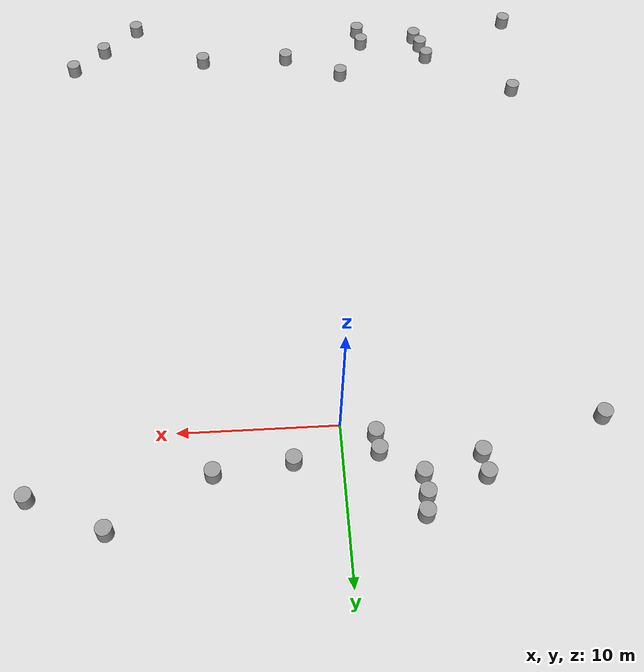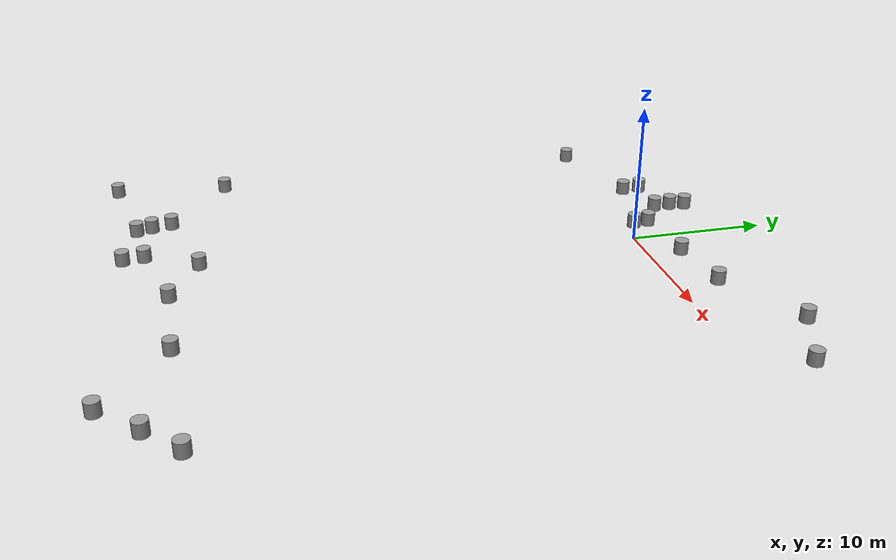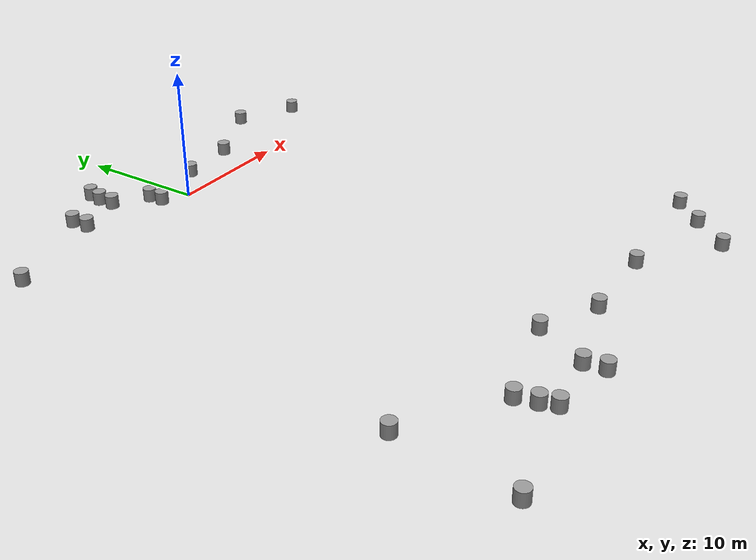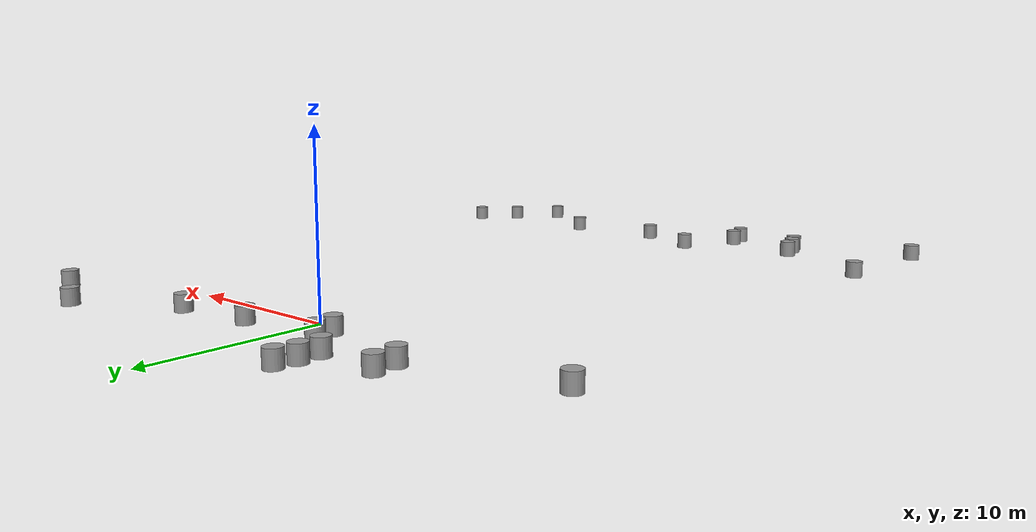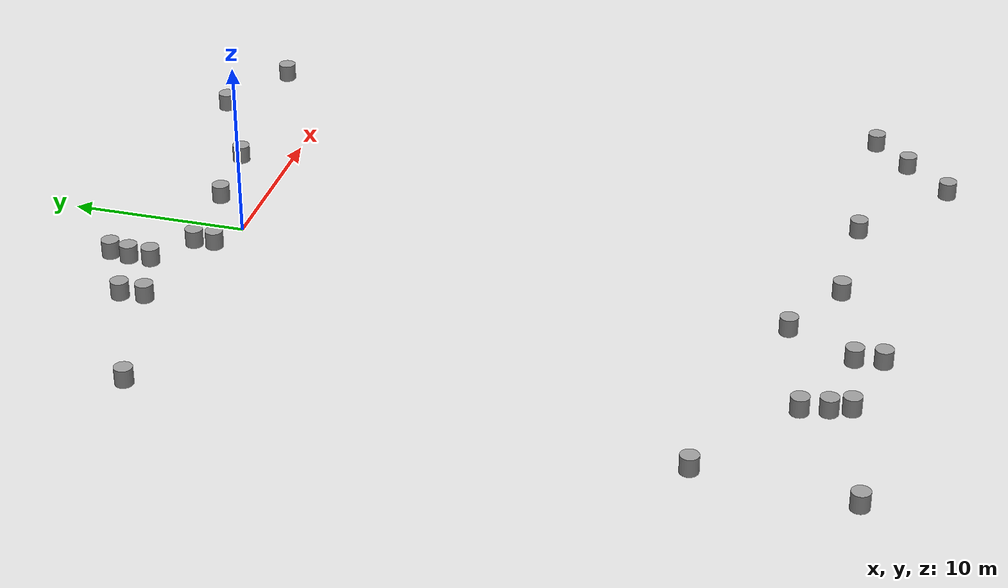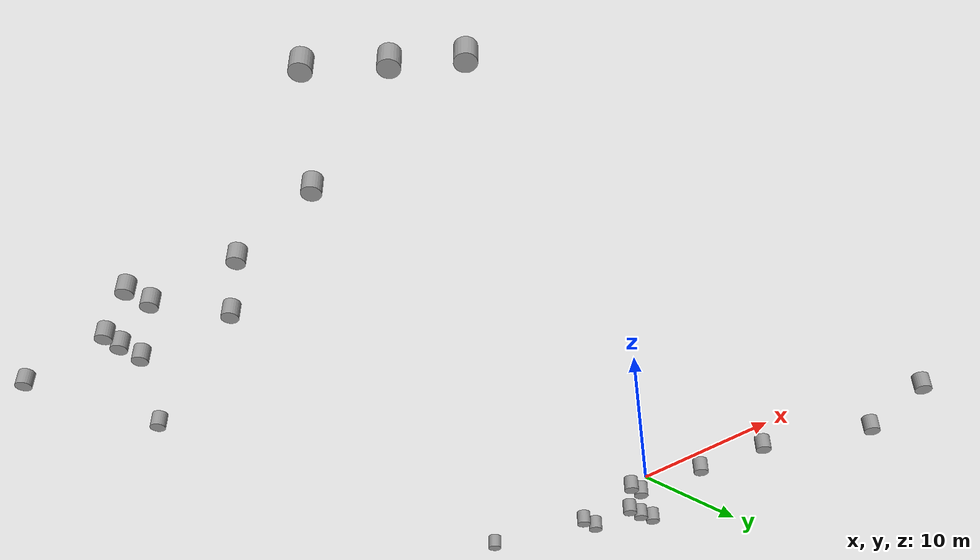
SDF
<?xml version='1.0'?>
<sdf version='1.7'>
  <model name='barricades'>
    <link name='link_0'>
      <inertial>
        <mass>1</mass>
        <inertia>
          <ixx>0.145833</ixx>
          <ixy>0</ixy>
          <ixz>0</ixz>
          <iyy>0.145833</iyy>
          <iyz>0</iyz>
          <izz>0.125</izz>
        </inertia>
      </inertial>
      <pose>-8.2797 2.45365 0.5 0 -0 0</pose>
      <visual name='visual'>
        <pose>0 0 0 0 -0 0</pose>
        <geometry>
          <cylinder>
            <radius>0.5</radius>
            <length>1</length>
          </cylinder>
        </geometry>
        <material>
          <lighting>1</lighting>
          <script>
            <uri>file://media/materials/scripts/gazebo.material</uri>
            <name>Gazebo/Grey</name>
          </script>
          <shader type='pixel'/>
        </material>
        <transparency>0</transparency>
        <cast_shadows>1</cast_shadows>
      </visual>
      <collision name='collision'>
        <laser_retro>0</laser_retro>
        <max_contacts>10</max_contacts>
        <pose>0 0 0 0 -0 0</pose>
        <geometry>
          <cylinder>
            <radius>0.5</radius>
            <length>1</length>
          </cylinder>
        </geometry>
        <surface>
          <friction>
            <ode>
              <mu>1</mu>
              <mu2>1</mu2>
              <fdir1>0 0 0</fdir1>
              <slip1>0</slip1>
              <slip2>0</slip2>
            </ode>
            <torsional>
              <coefficient>1</coefficient>
              <patch_radius>0</patch_radius>
              <surface_radius>0</surface_radius>
              <use_patch_radius>1</use_patch_radius>
              <ode>
                <slip>0</slip>
              </ode>
            </torsional>
          </friction>
          <bounce>
            <restitution_coefficient>0</restitution_coefficient>
            <threshold>1e+06</threshold>
          </bounce>
          <contact>
            <collide_without_contact>0</collide_without_contact>
            <collide_without_contact_bitmask>1</collide_without_contact_bitmask>
            <collide_bitmask>1</collide_bitmask>
            <ode>
              <soft_cfm>0</soft_cfm>
              <soft_erp>0.2</soft_erp>
              <kp>1e+13</kp>
              <kd>1</kd>
              <max_vel>0.01</max_vel>
              <min_depth>0</min_depth>
            </ode>
            <bullet>
              <split_impulse>1</split_impulse>
              <split_impulse_penetration_threshold>-0.01</split_impulse_penetration_threshold>
              <soft_cfm>0</soft_cfm>
              <soft_erp>0.2</soft_erp>
              <kp>1e+13</kp>
              <kd>1</kd>
            </bullet>
          </contact>
        </surface>
      </collision>
    </link>
    <link name='link_1'>
      <inertial>
        <mass>1</mass>
        <inertia>
          <ixx>0.145833</ixx>
          <ixy>0</ixy>
          <ixz>0</ixz>
          <iyy>0.145833</iyy>
          <iyz>0</iyz>
          <izz>0.125</izz>
        </inertia>
      </inertial>
      <pose>-8.36976 3.83402 0.5 0 -0 0</pose>
      <visual name='visual'>
        <pose>0 0 0 0 -0 0</pose>
        <geometry>
          <cylinder>
            <radius>0.5</radius>
            <length>1</length>
          </cylinder>
        </geometry>
        <material>
          <lighting>1</lighting>
          <script>
            <uri>file://media/materials/scripts/gazebo.material</uri>
            <name>Gazebo/Grey</name>
          </script>
          <shader type='pixel'/>
        </material>
        <transparency>0</transparency>
        <cast_shadows>1</cast_shadows>
      </visual>
      <collision name='collision'>
        <laser_retro>0</laser_retro>
        <max_contacts>10</max_contacts>
        <pose>0 0 0 0 -0 0</pose>
        <geometry>
          <cylinder>
            <radius>0.5</radius>
            <length>1</length>
          </cylinder>
        </geometry>
        <surface>
          <friction>
            <ode>
              <mu>1</mu>
              <mu2>1</mu2>
              <fdir1>0 0 0</fdir1>
              <slip1>0</slip1>
              <slip2>0</slip2>
            </ode>
            <torsional>
              <coefficient>1</coefficient>
              <patch_radius>0</patch_radius>
              <surface_radius>0</surface_radius>
              <use_patch_radius>1</use_patch_radius>
              <ode>
                <slip>0</slip>
              </ode>
            </torsional>
          </friction>
          <bounce>
            <restitution_coefficient>0</restitution_coefficient>
            <threshold>1e+06</threshold>
          </bounce>
          <contact>
            <collide_without_contact>0</collide_without_contact>
            <collide_without_contact_bitmask>1</collide_without_contact_bitmask>
            <collide_bitmask>1</collide_bitmask>
            <ode>
              <soft_cfm>0</soft_cfm>
              <soft_erp>0.2</soft_erp>
              <kp>1e+13</kp>
              <kd>1</kd>
              <max_vel>0.01</max_vel>
              <min_depth>0</min_depth>
            </ode>
            <bullet>
              <split_impulse>1</split_impulse>
              <split_impulse_penetration_threshold>-0.01</split_impulse_penetration_threshold>
              <soft_cfm>0</soft_cfm>
              <soft_erp>0.2</soft_erp>
              <kp>1e+13</kp>
              <kd>1</kd>
            </bullet>
          </contact>
        </surface>
      </collision>
    </link>
    <link name='link_10'>
      <inertial>
        <mass>1</mass>
        <inertia>
          <ixx>0.145833</ixx>
          <ixy>0</ixy>
          <ixz>0</ixz>
          <iyy>0.145833</iyy>
          <iyz>0</iyz>
          <izz>0.125</izz>
        </inertia>
      </inertial>
      <pose>13.8302 6.07947 0.5 0 -0 0</pose>
      <visual name='visual'>
        <pose>0 0 0 0 -0 0</pose>
        <geometry>
          <cylinder>
            <radius>0.5</radius>
            <length>1</length>
          </cylinder>
        </geometry>
        <material>
          <lighting>1</lighting>
          <script>
            <uri>file://media/materials/scripts/gazebo.material</uri>
            <name>Gazebo/Grey</name>
          </script>
          <shader type='pixel'/>
        </material>
        <transparency>0</transparency>
        <cast_shadows>1</cast_shadows>
      </visual>
      <collision name='collision'>
        <laser_retro>0</laser_retro>
        <max_contacts>10</max_contacts>
        <pose>0 0 0 0 -0 0</pose>
        <geometry>
          <cylinder>
            <radius>0.5</radius>
            <length>1</length>
          </cylinder>
        </geometry>
        <surface>
          <friction>
            <ode>
              <mu>1</mu>
              <mu2>1</mu2>
              <fdir1>0 0 0</fdir1>
              <slip1>0</slip1>
              <slip2>0</slip2>
            </ode>
            <torsional>
              <coefficient>1</coefficient>
              <patch_radius>0</patch_radius>
              <surface_radius>0</surface_radius>
              <use_patch_radius>1</use_patch_radius>
              <ode>
                <slip>0</slip>
              </ode>
            </torsional>
          </friction>
          <bounce>
            <restitution_coefficient>0</restitution_coefficient>
            <threshold>1e+06</threshold>
          </bounce>
          <contact>
            <collide_without_contact>0</collide_without_contact>
            <collide_without_contact_bitmask>1</collide_without_contact_bitmask>
            <collide_bitmask>1</collide_bitmask>
            <ode>
              <soft_cfm>0</soft_cfm>
              <soft_erp>0.2</soft_erp>
              <kp>1e+13</kp>
              <kd>1</kd>
              <max_vel>0.01</max_vel>
              <min_depth>0</min_depth>
            </ode>
            <bullet>
              <split_impulse>1</split_impulse>
              <split_impulse_penetration_threshold>-0.01</split_impulse_penetration_threshold>
              <soft_cfm>0</soft_cfm>
              <soft_erp>0.2</soft_erp>
              <kp>1e+13</kp>
              <kd>1</kd>
            </bullet>
          </contact>
        </surface>
      </collision>
    </link>
    <link name='link_11'>
      <inertial>
        <mass>1</mass>
        <inertia>
          <ixx>0.145833</ixx>
          <ixy>0</ixy>
          <ixz>0</ixz>
          <iyy>0.145833</iyy>
          <iyz>0</iyz>
          <izz>0.125</izz>
        </inertia>
      </inertial>
      <pose>18.559 3.86147 0.5 0 -0 0</pose>
      <visual name='visual'>
        <pose>0 0 0 0 -0 0</pose>
        <geometry>
          <cylinder>
            <radius>0.5</radius>
            <length>1</length>
          </cylinder>
        </geometry>
        <material>
          <lighting>1</lighting>
          <script>
            <uri>file://media/materials/scripts/gazebo.material</uri>
            <name>Gazebo/Grey</name>
          </script>
          <shader type='pixel'/>
        </material>
        <transparency>0</transparency>
        <cast_shadows>1</cast_shadows>
      </visual>
      <collision name='collision'>
        <laser_retro>0</laser_retro>
        <max_contacts>10</max_contacts>
        <pose>0 0 0 0 -0 0</pose>
        <geometry>
          <cylinder>
            <radius>0.5</radius>
            <length>1</length>
          </cylinder>
        </geometry>
        <surface>
          <friction>
            <ode>
              <mu>1</mu>
              <mu2>1</mu2>
              <fdir1>0 0 0</fdir1>
              <slip1>0</slip1>
              <slip2>0</slip2>
            </ode>
            <torsional>
              <coefficient>1</coefficient>
              <patch_radius>0</patch_radius>
              <surface_radius>0</surface_radius>
              <use_patch_radius>1</use_patch_radius>
              <ode>
                <slip>0</slip>
              </ode>
            </torsional>
          </friction>
          <bounce>
            <restitution_coefficient>0</restitution_coefficient>
            <threshold>1e+06</threshold>
          </bounce>
          <contact>
            <collide_without_contact>0</collide_without_contact>
            <collide_without_contact_bitmask>1</collide_without_contact_bitmask>
            <collide_bitmask>1</collide_bitmask>
            <ode>
              <soft_cfm>0</soft_cfm>
              <soft_erp>0.2</soft_erp>
              <kp>1e+13</kp>
              <kd>1</kd>
              <max_vel>0.01</max_vel>
              <min_depth>0</min_depth>
            </ode>
            <bullet>
              <split_impulse>1</split_impulse>
              <split_impulse_penetration_threshold>-0.01</split_impulse_penetration_threshold>
              <soft_cfm>0</soft_cfm>
              <soft_erp>0.2</soft_erp>
              <kp>1e+13</kp>
              <kd>1</kd>
            </bullet>
          </contact>
        </surface>
      </collision>
    </link>
    <link name='link_12'>
      <inertial>
        <mass>1</mass>
        <inertia>
          <ixx>0.145833</ixx>
          <ixy>0</ixy>
          <ixz>0</ixz>
          <iyy>0.145833</iyy>
          <iyz>0</iyz>
          <izz>0.125</izz>
        </inertia>
      </inertial>
      <pose>18.9935 -33.0026 0.5 0 -0 0</pose>
      <visual name='visual'>
        <pose>0 0 0 0 -0 0</pose>
        <geometry>
          <cylinder>
            <radius>0.5</radius>
            <length>1</length>
          </cylinder>
        </geometry>
        <material>
          <lighting>1</lighting>
          <script>
            <uri>file://media/materials/scripts/gazebo.material</uri>
            <name>Gazebo/Grey</name>
          </script>
          <shader type='pixel'/>
        </material>
        <transparency>0</transparency>
        <cast_shadows>1</cast_shadows>
      </visual>
      <collision name='collision'>
        <laser_retro>0</laser_retro>
        <max_contacts>10</max_contacts>
        <pose>0 0 0 0 -0 0</pose>
        <geometry>
          <cylinder>
            <radius>0.5</radius>
            <length>1</length>
          </cylinder>
        </geometry>
        <surface>
          <friction>
            <ode>
              <mu>1</mu>
              <mu2>1</mu2>
              <fdir1>0 0 0</fdir1>
              <slip1>0</slip1>
              <slip2>0</slip2>
            </ode>
            <torsional>
              <coefficient>1</coefficient>
              <patch_radius>0</patch_radius>
              <surface_radius>0</surface_radius>
              <use_patch_radius>1</use_patch_radius>
              <ode>
                <slip>0</slip>
              </ode>
            </torsional>
          </friction>
          <bounce>
            <restitution_coefficient>0</restitution_coefficient>
            <threshold>1e+06</threshold>
          </bounce>
          <contact>
            <collide_without_contact>0</collide_without_contact>
            <collide_without_contact_bitmask>1</collide_without_contact_bitmask>
            <collide_bitmask>1</collide_bitmask>
            <ode>
              <soft_cfm>0</soft_cfm>
              <soft_erp>0.2</soft_erp>
              <kp>1e+13</kp>
              <kd>1</kd>
              <max_vel>0.01</max_vel>
              <min_depth>0</min_depth>
            </ode>
            <bullet>
              <split_impulse>1</split_impulse>
              <split_impulse_penetration_threshold>-0.01</split_impulse_penetration_threshold>
              <soft_cfm>0</soft_cfm>
              <soft_erp>0.2</soft_erp>
              <kp>1e+13</kp>
              <kd>1</kd>
            </bullet>
          </contact>
        </surface>
      </collision>
    </link>
    <link name='link_13'>
      <inertial>
        <mass>1</mass>
        <inertia>
          <ixx>0.145833</ixx>
          <ixy>0</ixy>
          <ixz>0</ixz>
          <iyy>0.145833</iyy>
          <iyz>0</iyz>
          <izz>0.125</izz>
        </inertia>
      </inertial>
      <pose>16.7166 -35.1373 0.5 0 -0 0</pose>
      <visual name='visual'>
        <pose>0 0 0 0 -0 0</pose>
        <geometry>
          <cylinder>
            <radius>0.5</radius>
            <length>1</length>
          </cylinder>
        </geometry>
        <material>
          <lighting>1</lighting>
          <script>
            <uri>file://media/materials/scripts/gazebo.material</uri>
            <name>Gazebo/Grey</name>
          </script>
          <shader type='pixel'/>
        </material>
        <transparency>0</transparency>
        <cast_shadows>1</cast_shadows>
      </visual>
      <collision name='collision'>
        <laser_retro>0</laser_retro>
        <max_contacts>10</max_contacts>
        <pose>0 0 0 0 -0 0</pose>
        <geometry>
          <cylinder>
            <radius>0.5</radius>
            <length>1</length>
          </cylinder>
        </geometry>
        <surface>
          <friction>
            <ode>
              <mu>1</mu>
              <mu2>1</mu2>
              <fdir1>0 0 0</fdir1>
              <slip1>0</slip1>
              <slip2>0</slip2>
            </ode>
            <torsional>
              <coefficient>1</coefficient>
              <patch_radius>0</patch_radius>
              <surface_radius>0</surface_radius>
              <use_patch_radius>1</use_patch_radius>
              <ode>
                <slip>0</slip>
              </ode>
            </torsional>
          </friction>
          <bounce>
            <restitution_coefficient>0</restitution_coefficient>
            <threshold>1e+06</threshold>
          </bounce>
          <contact>
            <collide_without_contact>0</collide_without_contact>
            <collide_without_contact_bitmask>1</collide_without_contact_bitmask>
            <collide_bitmask>1</collide_bitmask>
            <ode>
              <soft_cfm>0</soft_cfm>
              <soft_erp>0.2</soft_erp>
              <kp>1e+13</kp>
              <kd>1</kd>
              <max_vel>0.01</max_vel>
              <min_depth>0</min_depth>
            </ode>
            <bullet>
              <split_impulse>1</split_impulse>
              <split_impulse_penetration_threshold>-0.01</split_impulse_penetration_threshold>
              <soft_cfm>0</soft_cfm>
              <soft_erp>0.2</soft_erp>
              <kp>1e+13</kp>
              <kd>1</kd>
            </bullet>
          </contact>
        </surface>
      </collision>
    </link>
    <link name='link_14'>
      <inertial>
        <mass>1</mass>
        <inertia>
          <ixx>0.145833</ixx>
          <ixy>0</ixy>
          <ixz>0</ixz>
          <iyy>0.145833</iyy>
          <iyz>0</iyz>
          <izz>0.125</izz>
        </inertia>
      </inertial>
      <pose>14.2027 -37.7241 0.5 0 -0 0</pose>
      <visual name='visual'>
        <pose>0 0 0 0 -0 0</pose>
        <geometry>
          <cylinder>
            <radius>0.5</radius>
            <length>1</length>
          </cylinder>
        </geometry>
        <material>
          <lighting>1</lighting>
          <script>
            <uri>file://media/materials/scripts/gazebo.material</uri>
            <name>Gazebo/Grey</name>
          </script>
          <shader type='pixel'/>
        </material>
        <transparency>0</transparency>
        <cast_shadows>1</cast_shadows>
      </visual>
      <collision name='collision'>
        <laser_retro>0</laser_retro>
        <max_contacts>10</max_contacts>
        <pose>0 0 0 0 -0 0</pose>
        <geometry>
          <cylinder>
            <radius>0.5</radius>
            <length>1</length>
          </cylinder>
        </geometry>
        <surface>
          <friction>
            <ode>
              <mu>1</mu>
              <mu2>1</mu2>
              <fdir1>0 0 0</fdir1>
              <slip1>0</slip1>
              <slip2>0</slip2>
            </ode>
            <torsional>
              <coefficient>1</coefficient>
              <patch_radius>0</patch_radius>
              <surface_radius>0</surface_radius>
              <use_patch_radius>1</use_patch_radius>
              <ode>
                <slip>0</slip>
              </ode>
            </torsional>
          </friction>
          <bounce>
            <restitution_coefficient>0</restitution_coefficient>
            <threshold>1e+06</threshold>
          </bounce>
          <contact>
            <collide_without_contact>0</collide_without_contact>
            <collide_without_contact_bitmask>1</collide_without_contact_bitmask>
            <collide_bitmask>1</collide_bitmask>
            <ode>
              <soft_cfm>0</soft_cfm>
              <soft_erp>0.2</soft_erp>
              <kp>1e+13</kp>
              <kd>1</kd>
              <max_vel>0.01</max_vel>
              <min_depth>0</min_depth>
            </ode>
            <bullet>
              <split_impulse>1</split_impulse>
              <split_impulse_penetration_threshold>-0.01</split_impulse_penetration_threshold>
              <soft_cfm>0</soft_cfm>
              <soft_erp>0.2</soft_erp>
              <kp>1e+13</kp>
              <kd>1</kd>
            </bullet>
          </contact>
        </surface>
      </collision>
    </link>
    <link name='link_15'>
      <inertial>
        <mass>1</mass>
        <inertia>
          <ixx>0.145833</ixx>
          <ixy>0</ixy>
          <ixz>0</ixz>
          <iyy>0.145833</iyy>
          <iyz>0</iyz>
          <izz>0.125</izz>
        </inertia>
      </inertial>
      <pose>8.55042 -33.4399 0.5 0 -0 0</pose>
      <visual name='visual'>
        <pose>0 0 0 0 -0 0</pose>
        <geometry>
          <cylinder>
            <radius>0.5</radius>
            <length>1</length>
          </cylinder>
        </geometry>
        <material>
          <lighting>1</lighting>
          <script>
            <uri>file://media/materials/scripts/gazebo.material</uri>
            <name>Gazebo/Grey</name>
          </script>
          <shader type='pixel'/>
        </material>
        <transparency>0</transparency>
        <cast_shadows>1</cast_shadows>
      </visual>
      <collision name='collision'>
        <laser_retro>0</laser_retro>
        <max_contacts>10</max_contacts>
        <pose>0 0 0 0 -0 0</pose>
        <geometry>
          <cylinder>
            <radius>0.5</radius>
            <length>1</length>
          </cylinder>
        </geometry>
        <surface>
          <friction>
            <ode>
              <mu>1</mu>
              <mu2>1</mu2>
              <fdir1>0 0 0</fdir1>
              <slip1>0</slip1>
              <slip2>0</slip2>
            </ode>
            <torsional>
              <coefficient>1</coefficient>
              <patch_radius>0</patch_radius>
              <surface_radius>0</surface_radius>
              <use_patch_radius>1</use_patch_radius>
              <ode>
                <slip>0</slip>
              </ode>
            </torsional>
          </friction>
          <bounce>
            <restitution_coefficient>0</restitution_coefficient>
            <threshold>1e+06</threshold>
          </bounce>
          <contact>
            <collide_without_contact>0</collide_without_contact>
            <collide_without_contact_bitmask>1</collide_without_contact_bitmask>
            <collide_bitmask>1</collide_bitmask>
            <ode>
              <soft_cfm>0</soft_cfm>
              <soft_erp>0.2</soft_erp>
              <kp>1e+13</kp>
              <kd>1</kd>
              <max_vel>0.01</max_vel>
              <min_depth>0</min_depth>
            </ode>
            <bullet>
              <split_impulse>1</split_impulse>
              <split_impulse_penetration_threshold>-0.01</split_impulse_penetration_threshold>
              <soft_cfm>0</soft_cfm>
              <soft_erp>0.2</soft_erp>
              <kp>1e+13</kp>
              <kd>1</kd>
            </bullet>
          </contact>
        </surface>
      </collision>
    </link>
    <link name='link_16'>
      <inertial>
        <mass>1</mass>
        <inertia>
          <ixx>0.145833</ixx>
          <ixy>0</ixy>
          <ixz>0</ixz>
          <iyy>0.145833</iyy>
          <iyz>0</iyz>
          <izz>0.125</izz>
        </inertia>
      </inertial>
      <pose>1.78413 -33.4864 0.5 0 -0 0</pose>
      <visual name='visual'>
        <pose>0 0 0 0 -0 0</pose>
        <geometry>
          <cylinder>
            <radius>0.5</radius>
            <length>1</length>
          </cylinder>
        </geometry>
        <material>
          <lighting>1</lighting>
          <script>
            <uri>file://media/materials/scripts/gazebo.material</uri>
            <name>Gazebo/Grey</name>
          </script>
          <shader type='pixel'/>
        </material>
        <transparency>0</transparency>
        <cast_shadows>1</cast_shadows>
      </visual>
      <collision name='collision'>
        <laser_retro>0</laser_retro>
        <max_contacts>10</max_contacts>
        <pose>0 0 0 0 -0 0</pose>
        <geometry>
          <cylinder>
            <radius>0.5</radius>
            <length>1</length>
          </cylinder>
        </geometry>
        <surface>
          <friction>
            <ode>
              <mu>1</mu>
              <mu2>1</mu2>
              <fdir1>0 0 0</fdir1>
              <slip1>0</slip1>
              <slip2>0</slip2>
            </ode>
            <torsional>
              <coefficient>1</coefficient>
              <patch_radius>0</patch_radius>
              <surface_radius>0</surface_radius>
              <use_patch_radius>1</use_patch_radius>
              <ode>
                <slip>0</slip>
              </ode>
            </torsional>
          </friction>
          <bounce>
            <restitution_coefficient>0</restitution_coefficient>
            <threshold>1e+06</threshold>
          </bounce>
          <contact>
            <collide_without_contact>0</collide_without_contact>
            <collide_without_contact_bitmask>1</collide_without_contact_bitmask>
            <collide_bitmask>1</collide_bitmask>
            <ode>
              <soft_cfm>0</soft_cfm>
              <soft_erp>0.2</soft_erp>
              <kp>1e+13</kp>
              <kd>1</kd>
              <max_vel>0.01</max_vel>
              <min_depth>0</min_depth>
            </ode>
            <bullet>
              <split_impulse>1</split_impulse>
              <split_impulse_penetration_threshold>-0.01</split_impulse_penetration_threshold>
              <soft_cfm>0</soft_cfm>
              <soft_erp>0.2</soft_erp>
              <kp>1e+13</kp>
              <kd>1</kd>
            </bullet>
          </contact>
        </surface>
      </collision>
    </link>
    <link name='link_17'>
      <inertial>
        <mass>1</mass>
        <inertia>
          <ixx>0.145833</ixx>
          <ixy>0</ixy>
          <ixz>0</ixz>
          <iyy>0.145833</iyy>
          <iyz>0</iyz>
          <izz>0.125</izz>
        </inertia>
      </inertial>
      <pose>-2.53429 -31.3437 0.5 0 -0 0</pose>
      <visual name='visual'>
        <pose>0 0 0 0 -0 0</pose>
        <geometry>
          <cylinder>
            <radius>0.5</radius>
            <length>1</length>
          </cylinder>
        </geometry>
        <material>
          <lighting>1</lighting>
          <script>
            <uri>file://media/materials/scripts/gazebo.material</uri>
            <name>Gazebo/Grey</name>
          </script>
          <shader type='pixel'/>
        </material>
        <transparency>0</transparency>
        <cast_shadows>1</cast_shadows>
      </visual>
      <collision name='collision'>
        <laser_retro>0</laser_retro>
        <max_contacts>10</max_contacts>
        <pose>0 0 0 0 -0 0</pose>
        <geometry>
          <cylinder>
            <radius>0.5</radius>
            <length>1</length>
          </cylinder>
        </geometry>
        <surface>
          <friction>
            <ode>
              <mu>1</mu>
              <mu2>1</mu2>
              <fdir1>0 0 0</fdir1>
              <slip1>0</slip1>
              <slip2>0</slip2>
            </ode>
            <torsional>
              <coefficient>1</coefficient>
              <patch_radius>0</patch_radius>
              <surface_radius>0</surface_radius>
              <use_patch_radius>1</use_patch_radius>
              <ode>
                <slip>0</slip>
              </ode>
            </torsional>
          </friction>
          <bounce>
            <restitution_coefficient>0</restitution_coefficient>
            <threshold>1e+06</threshold>
          </bounce>
          <contact>
            <collide_without_contact>0</collide_without_contact>
            <collide_without_contact_bitmask>1</collide_without_contact_bitmask>
            <collide_bitmask>1</collide_bitmask>
            <ode>
              <soft_cfm>0</soft_cfm>
              <soft_erp>0.2</soft_erp>
              <kp>1e+13</kp>
              <kd>1</kd>
              <max_vel>0.01</max_vel>
              <min_depth>0</min_depth>
            </ode>
            <bullet>
              <split_impulse>1</split_impulse>
              <split_impulse_penetration_threshold>-0.01</split_impulse_penetration_threshold>
              <soft_cfm>0</soft_cfm>
              <soft_erp>0.2</soft_erp>
              <kp>1e+13</kp>
              <kd>1</kd>
            </bullet>
          </contact>
        </surface>
      </collision>
    </link>
    <link name='link_18'>
      <inertial>
        <mass>1</mass>
        <inertia>
          <ixx>0.145833</ixx>
          <ixy>0</ixy>
          <ixz>0</ixz>
          <iyy>0.145833</iyy>
          <iyz>0</iyz>
          <izz>0.125</izz>
        </inertia>
      </inertial>
      <pose>-4.34832 -36.5783 0.5 0 -0 0</pose>
      <visual name='visual'>
        <pose>0 0 0 0 -0 0</pose>
        <geometry>
          <cylinder>
            <radius>0.5</radius>
            <length>1</length>
          </cylinder>
        </geometry>
        <material>
          <lighting>1</lighting>
          <script>
            <uri>file://media/materials/scripts/gazebo.material</uri>
            <name>Gazebo/Grey</name>
          </script>
          <shader type='pixel'/>
        </material>
        <transparency>0</transparency>
        <cast_shadows>1</cast_shadows>
      </visual>
      <collision name='collision'>
        <laser_retro>0</laser_retro>
        <max_contacts>10</max_contacts>
        <pose>0 0 0 0 -0 0</pose>
        <geometry>
          <cylinder>
            <radius>0.5</radius>
            <length>1</length>
          </cylinder>
        </geometry>
        <surface>
          <friction>
            <ode>
              <mu>1</mu>
              <mu2>1</mu2>
              <fdir1>0 0 0</fdir1>
              <slip1>0</slip1>
              <slip2>0</slip2>
            </ode>
            <torsional>
              <coefficient>1</coefficient>
              <patch_radius>0</patch_radius>
              <surface_radius>0</surface_radius>
              <use_patch_radius>1</use_patch_radius>
              <ode>
                <slip>0</slip>
              </ode>
            </torsional>
          </friction>
          <bounce>
            <restitution_coefficient>0</restitution_coefficient>
            <threshold>1e+06</threshold>
          </bounce>
          <contact>
            <collide_without_contact>0</collide_without_contact>
            <collide_without_contact_bitmask>1</collide_without_contact_bitmask>
            <collide_bitmask>1</collide_bitmask>
            <ode>
              <soft_cfm>0</soft_cfm>
              <soft_erp>0.2</soft_erp>
              <kp>1e+13</kp>
              <kd>1</kd>
              <max_vel>0.01</max_vel>
              <min_depth>0</min_depth>
            </ode>
            <bullet>
              <split_impulse>1</split_impulse>
              <split_impulse_penetration_threshold>-0.01</split_impulse_penetration_threshold>
              <soft_cfm>0</soft_cfm>
              <soft_erp>0.2</soft_erp>
              <kp>1e+13</kp>
              <kd>1</kd>
            </bullet>
          </contact>
        </surface>
      </collision>
    </link>
    <link name='link_19'>
      <inertial>
        <mass>1</mass>
        <inertia>
          <ixx>0.145833</ixx>
          <ixy>0</ixy>
          <ixz>0</ixz>
          <iyy>0.145833</iyy>
          <iyz>0</iyz>
          <izz>0.125</izz>
        </inertia>
      </inertial>
      <pose>-4.5506 -35.0849 0.5 0 -0 0</pose>
      <visual name='visual'>
        <pose>0 0 0 0 -0 0</pose>
        <geometry>
          <cylinder>
            <radius>0.5</radius>
            <length>1</length>
          </cylinder>
        </geometry>
        <material>
          <lighting>1</lighting>
          <script>
            <uri>file://media/materials/scripts/gazebo.material</uri>
            <name>Gazebo/Grey</name>
          </script>
          <shader type='pixel'/>
        </material>
        <transparency>0</transparency>
        <cast_shadows>1</cast_shadows>
      </visual>
      <collision name='collision'>
        <laser_retro>0</laser_retro>
        <max_contacts>10</max_contacts>
        <pose>0 0 0 0 -0 0</pose>
        <geometry>
          <cylinder>
            <radius>0.5</radius>
            <length>1</length>
          </cylinder>
        </geometry>
        <surface>
          <friction>
            <ode>
              <mu>1</mu>
              <mu2>1</mu2>
              <fdir1>0 0 0</fdir1>
              <slip1>0</slip1>
              <slip2>0</slip2>
            </ode>
            <torsional>
              <coefficient>1</coefficient>
              <patch_radius>0</patch_radius>
              <surface_radius>0</surface_radius>
              <use_patch_radius>1</use_patch_radius>
              <ode>
                <slip>0</slip>
              </ode>
            </torsional>
          </friction>
          <bounce>
            <restitution_coefficient>0</restitution_coefficient>
            <threshold>1e+06</threshold>
          </bounce>
          <contact>
            <collide_without_contact>0</collide_without_contact>
            <collide_without_contact_bitmask>1</collide_without_contact_bitmask>
            <collide_bitmask>1</collide_bitmask>
            <ode>
              <soft_cfm>0</soft_cfm>
              <soft_erp>0.2</soft_erp>
              <kp>1e+13</kp>
              <kd>1</kd>
              <max_vel>0.01</max_vel>
              <min_depth>0</min_depth>
            </ode>
            <bullet>
              <split_impulse>1</split_impulse>
              <split_impulse_penetration_threshold>-0.01</split_impulse_penetration_threshold>
              <soft_cfm>0</soft_cfm>
              <soft_erp>0.2</soft_erp>
              <kp>1e+13</kp>
              <kd>1</kd>
            </bullet>
          </contact>
        </surface>
      </collision>
    </link>
    <link name='link_2'>
      <inertial>
        <mass>1</mass>
        <inertia>
          <ixx>0.145833</ixx>
          <ixy>0</ixy>
          <ixz>0</ixz>
          <iyy>0.145833</iyy>
          <iyz>0</iyz>
          <izz>0.125</izz>
        </inertia>
      </inertial>
      <pose>-4.48114 6.00674 0.5 0 -0 0</pose>
      <visual name='visual'>
        <pose>0 0 0 0 -0 0</pose>
        <geometry>
          <cylinder>
            <radius>0.5</radius>
            <length>1</length>
          </cylinder>
        </geometry>
        <material>
          <lighting>1</lighting>
          <script>
            <uri>file://media/materials/scripts/gazebo.material</uri>
            <name>Gazebo/Grey</name>
          </script>
          <shader type='pixel'/>
        </material>
        <transparency>0</transparency>
        <cast_shadows>1</cast_shadows>
      </visual>
      <collision name='collision'>
        <laser_retro>0</laser_retro>
        <max_contacts>10</max_contacts>
        <pose>0 0 0 0 -0 0</pose>
        <geometry>
          <cylinder>
            <radius>0.5</radius>
            <length>1</length>
          </cylinder>
        </geometry>
        <surface>
          <friction>
            <ode>
              <mu>1</mu>
              <mu2>1</mu2>
              <fdir1>0 0 0</fdir1>
              <slip1>0</slip1>
              <slip2>0</slip2>
            </ode>
            <torsional>
              <coefficient>1</coefficient>
              <patch_radius>0</patch_radius>
              <surface_radius>0</surface_radius>
              <use_patch_radius>1</use_patch_radius>
              <ode>
                <slip>0</slip>
              </ode>
            </torsional>
          </friction>
          <bounce>
            <restitution_coefficient>0</restitution_coefficient>
            <threshold>1e+06</threshold>
          </bounce>
          <contact>
            <collide_without_contact>0</collide_without_contact>
            <collide_without_contact_bitmask>1</collide_without_contact_bitmask>
            <collide_bitmask>1</collide_bitmask>
            <ode>
              <soft_cfm>0</soft_cfm>
              <soft_erp>0.2</soft_erp>
              <kp>1e+13</kp>
              <kd>1</kd>
              <max_vel>0.01</max_vel>
              <min_depth>0</min_depth>
            </ode>
            <bullet>
              <split_impulse>1</split_impulse>
              <split_impulse_penetration_threshold>-0.01</split_impulse_penetration_threshold>
              <soft_cfm>0</soft_cfm>
              <soft_erp>0.2</soft_erp>
              <kp>1e+13</kp>
              <kd>1</kd>
            </bullet>
          </contact>
        </surface>
      </collision>
    </link>
    <link name='link_20'>
      <inertial>
        <mass>1</mass>
        <inertia>
          <ixx>0.145833</ixx>
          <ixy>0</ixy>
          <ixz>0</ixz>
          <iyy>0.145833</iyy>
          <iyz>0</iyz>
          <izz>0.125</izz>
        </inertia>
      </inertial>
      <pose>-9.73314 -33.0999 0.5 0 -0 0</pose>
      <visual name='visual'>
        <pose>0 0 0 0 -0 0</pose>
        <geometry>
          <cylinder>
            <radius>0.5</radius>
            <length>1</length>
          </cylinder>
        </geometry>
        <material>
          <lighting>1</lighting>
          <script>
            <uri>file://media/materials/scripts/gazebo.material</uri>
            <name>Gazebo/Grey</name>
          </script>
          <shader type='pixel'/>
        </material>
        <transparency>0</transparency>
        <cast_shadows>1</cast_shadows>
      </visual>
      <collision name='collision'>
        <laser_retro>0</laser_retro>
        <max_contacts>10</max_contacts>
        <pose>0 0 0 0 -0 0</pose>
        <geometry>
          <cylinder>
            <radius>0.5</radius>
            <length>1</length>
          </cylinder>
        </geometry>
        <surface>
          <friction>
            <ode>
              <mu>1</mu>
              <mu2>1</mu2>
              <fdir1>0 0 0</fdir1>
              <slip1>0</slip1>
              <slip2>0</slip2>
            </ode>
            <torsional>
              <coefficient>1</coefficient>
              <patch_radius>0</patch_radius>
              <surface_radius>0</surface_radius>
              <use_patch_radius>1</use_patch_radius>
              <ode>
                <slip>0</slip>
              </ode>
            </torsional>
          </friction>
          <bounce>
            <restitution_coefficient>0</restitution_coefficient>
            <threshold>1e+06</threshold>
          </bounce>
          <contact>
            <collide_without_contact>0</collide_without_contact>
            <collide_without_contact_bitmask>1</collide_without_contact_bitmask>
            <collide_bitmask>1</collide_bitmask>
            <ode>
              <soft_cfm>0</soft_cfm>
              <soft_erp>0.2</soft_erp>
              <kp>1e+13</kp>
              <kd>1</kd>
              <max_vel>0.01</max_vel>
              <min_depth>0</min_depth>
            </ode>
            <bullet>
              <split_impulse>1</split_impulse>
              <split_impulse_penetration_threshold>-0.01</split_impulse_penetration_threshold>
              <soft_cfm>0</soft_cfm>
              <soft_erp>0.2</soft_erp>
              <kp>1e+13</kp>
              <kd>1</kd>
            </bullet>
          </contact>
        </surface>
      </collision>
    </link>
    <link name='link_21'>
      <inertial>
        <mass>1</mass>
        <inertia>
          <ixx>0.145833</ixx>
          <ixy>0</ixy>
          <ixz>0</ixz>
          <iyy>0.145833</iyy>
          <iyz>0</iyz>
          <izz>0.125</izz>
        </inertia>
      </inertial>
      <pose>-9.41369 -34.5361 0.5 0 -0 0</pose>
      <visual name='visual'>
        <pose>0 0 0 0 -0 0</pose>
        <geometry>
          <cylinder>
            <radius>0.5</radius>
            <length>1</length>
          </cylinder>
        </geometry>
        <material>
          <lighting>1</lighting>
          <script>
            <uri>file://media/materials/scripts/gazebo.material</uri>
            <name>Gazebo/Grey</name>
          </script>
          <shader type='pixel'/>
        </material>
        <transparency>0</transparency>
        <cast_shadows>1</cast_shadows>
      </visual>
      <collision name='collision'>
        <laser_retro>0</laser_retro>
        <max_contacts>10</max_contacts>
        <pose>0 0 0 0 -0 0</pose>
        <geometry>
          <cylinder>
            <radius>0.5</radius>
            <length>1</length>
          </cylinder>
        </geometry>
        <surface>
          <friction>
            <ode>
              <mu>1</mu>
              <mu2>1</mu2>
              <fdir1>0 0 0</fdir1>
              <slip1>0</slip1>
              <slip2>0</slip2>
            </ode>
            <torsional>
              <coefficient>1</coefficient>
              <patch_radius>0</patch_radius>
              <surface_radius>0</surface_radius>
              <use_patch_radius>1</use_patch_radius>
              <ode>
                <slip>0</slip>
              </ode>
            </torsional>
          </friction>
          <bounce>
            <restitution_coefficient>0</restitution_coefficient>
            <threshold>1e+06</threshold>
          </bounce>
          <contact>
            <collide_without_contact>0</collide_without_contact>
            <collide_without_contact_bitmask>1</collide_without_contact_bitmask>
            <collide_bitmask>1</collide_bitmask>
            <ode>
              <soft_cfm>0</soft_cfm>
              <soft_erp>0.2</soft_erp>
              <kp>1e+13</kp>
              <kd>1</kd>
              <max_vel>0.01</max_vel>
              <min_depth>0</min_depth>
            </ode>
            <bullet>
              <split_impulse>1</split_impulse>
              <split_impulse_penetration_threshold>-0.01</split_impulse_penetration_threshold>
              <soft_cfm>0</soft_cfm>
              <soft_erp>0.2</soft_erp>
              <kp>1e+13</kp>
              <kd>1</kd>
            </bullet>
          </contact>
        </surface>
      </collision>
    </link>
    <link name='link_22'>
      <inertial>
        <mass>1</mass>
        <inertia>
          <ixx>0.145833</ixx>
          <ixy>0</ixy>
          <ixz>0</ixz>
          <iyy>0.145833</iyy>
          <iyz>0</iyz>
          <izz>0.125</izz>
        </inertia>
      </inertial>
      <pose>-9.03237 -35.6329 0.5 0 -0 0</pose>
      <visual name='visual'>
        <pose>0 0 0 0 -0 0</pose>
        <geometry>
          <cylinder>
            <radius>0.5</radius>
            <length>1</length>
          </cylinder>
        </geometry>
        <material>
          <lighting>1</lighting>
          <script>
            <uri>file://media/materials/scripts/gazebo.material</uri>
            <name>Gazebo/Grey</name>
          </script>
          <shader type='pixel'/>
        </material>
        <transparency>0</transparency>
        <cast_shadows>1</cast_shadows>
      </visual>
      <collision name='collision'>
        <laser_retro>0</laser_retro>
        <max_contacts>10</max_contacts>
        <pose>0 0 0 0 -0 0</pose>
        <geometry>
          <cylinder>
            <radius>0.5</radius>
            <length>1</length>
          </cylinder>
        </geometry>
        <surface>
          <friction>
            <ode>
              <mu>1</mu>
              <mu2>1</mu2>
              <fdir1>0 0 0</fdir1>
              <slip1>0</slip1>
              <slip2>0</slip2>
            </ode>
            <torsional>
              <coefficient>1</coefficient>
              <patch_radius>0</patch_radius>
              <surface_radius>0</surface_radius>
              <use_patch_radius>1</use_patch_radius>
              <ode>
                <slip>0</slip>
              </ode>
            </torsional>
          </friction>
          <bounce>
            <restitution_coefficient>0</restitution_coefficient>
            <threshold>1e+06</threshold>
          </bounce>
          <contact>
            <collide_without_contact>0</collide_without_contact>
            <collide_without_contact_bitmask>1</collide_without_contact_bitmask>
            <collide_bitmask>1</collide_bitmask>
            <ode>
              <soft_cfm>0</soft_cfm>
              <soft_erp>0.2</soft_erp>
              <kp>1e+13</kp>
              <kd>1</kd>
              <max_vel>0.01</max_vel>
              <min_depth>0</min_depth>
            </ode>
            <bullet>
              <split_impulse>1</split_impulse>
              <split_impulse_penetration_threshold>-0.01</split_impulse_penetration_threshold>
              <soft_cfm>0</soft_cfm>
              <soft_erp>0.2</soft_erp>
              <kp>1e+13</kp>
              <kd>1</kd>
            </bullet>
          </contact>
        </surface>
      </collision>
    </link>
    <link name='link_23'>
      <inertial>
        <mass>1</mass>
        <inertia>
          <ixx>0.145833</ixx>
          <ixy>0</ixy>
          <ixz>0</ixz>
          <iyy>0.145833</iyy>
          <iyz>0</iyz>
          <izz>0.125</izz>
        </inertia>
      </inertial>
      <pose>-16.8538 -37.146 0.5 0 -0 0</pose>
      <visual name='visual'>
        <pose>0 0 0 0 -0 0</pose>
        <geometry>
          <cylinder>
            <radius>0.5</radius>
            <length>1</length>
          </cylinder>
        </geometry>
        <material>
          <lighting>1</lighting>
          <script>
            <uri>file://media/materials/scripts/gazebo.material</uri>
            <name>Gazebo/Grey</name>
          </script>
          <shader type='pixel'/>
        </material>
        <transparency>0</transparency>
        <cast_shadows>1</cast_shadows>
      </visual>
      <collision name='collision'>
        <laser_retro>0</laser_retro>
        <max_contacts>10</max_contacts>
        <pose>0 0 0 0 -0 0</pose>
        <geometry>
          <cylinder>
            <radius>0.5</radius>
            <length>1</length>
          </cylinder>
        </geometry>
        <surface>
          <friction>
            <ode>
              <mu>1</mu>
              <mu2>1</mu2>
              <fdir1>0 0 0</fdir1>
              <slip1>0</slip1>
              <slip2>0</slip2>
            </ode>
            <torsional>
              <coefficient>1</coefficient>
              <patch_radius>0</patch_radius>
              <surface_radius>0</surface_radius>
              <use_patch_radius>1</use_patch_radius>
              <ode>
                <slip>0</slip>
              </ode>
            </torsional>
          </friction>
          <bounce>
            <restitution_coefficient>0</restitution_coefficient>
            <threshold>1e+06</threshold>
          </bounce>
          <contact>
            <collide_without_contact>0</collide_without_contact>
            <collide_without_contact_bitmask>1</collide_without_contact_bitmask>
            <collide_bitmask>1</collide_bitmask>
            <ode>
              <soft_cfm>0</soft_cfm>
              <soft_erp>0.2</soft_erp>
              <kp>1e+13</kp>
              <kd>1</kd>
              <max_vel>0.01</max_vel>
              <min_depth>0</min_depth>
            </ode>
            <bullet>
              <split_impulse>1</split_impulse>
              <split_impulse_penetration_threshold>-0.01</split_impulse_penetration_threshold>
              <soft_cfm>0</soft_cfm>
              <soft_erp>0.2</soft_erp>
              <kp>1e+13</kp>
              <kd>1</kd>
            </bullet>
          </contact>
        </surface>
      </collision>
    </link>
    <link name='link_24'>
      <inertial>
        <mass>1</mass>
        <inertia>
          <ixx>0.145833</ixx>
          <ixy>0</ixy>
          <ixz>0</ixz>
          <iyy>0.145833</iyy>
          <iyz>0</iyz>
          <izz>0.125</izz>
        </inertia>
      </inertial>
      <pose>-16.0804 -28.8009 0.5 0 -0 0</pose>
      <visual name='visual'>
        <pose>0 0 0 0 -0 0</pose>
        <geometry>
          <cylinder>
            <radius>0.5</radius>
            <length>1</length>
          </cylinder>
        </geometry>
        <material>
          <lighting>1</lighting>
          <script>
            <uri>file://media/materials/scripts/gazebo.material</uri>
            <name>Gazebo/Grey</name>
          </script>
          <shader type='pixel'/>
        </material>
        <transparency>0</transparency>
        <cast_shadows>1</cast_shadows>
      </visual>
      <collision name='collision'>
        <laser_retro>0</laser_retro>
        <max_contacts>10</max_contacts>
        <pose>0 0 0 0 -0 0</pose>
        <geometry>
          <cylinder>
            <radius>0.5</radius>
            <length>1</length>
          </cylinder>
        </geometry>
        <surface>
          <friction>
            <ode>
              <mu>1</mu>
              <mu2>1</mu2>
              <fdir1>0 0 0</fdir1>
              <slip1>0</slip1>
              <slip2>0</slip2>
            </ode>
            <torsional>
              <coefficient>1</coefficient>
              <patch_radius>0</patch_radius>
              <surface_radius>0</surface_radius>
              <use_patch_radius>1</use_patch_radius>
              <ode>
                <slip>0</slip>
              </ode>
            </torsional>
          </friction>
          <bounce>
            <restitution_coefficient>0</restitution_coefficient>
            <threshold>1e+06</threshold>
          </bounce>
          <contact>
            <collide_without_contact>0</collide_without_contact>
            <collide_without_contact_bitmask>1</collide_without_contact_bitmask>
            <collide_bitmask>1</collide_bitmask>
            <ode>
              <soft_cfm>0</soft_cfm>
              <soft_erp>0.2</soft_erp>
              <kp>1e+13</kp>
              <kd>1</kd>
              <max_vel>0.01</max_vel>
              <min_depth>0</min_depth>
            </ode>
            <bullet>
              <split_impulse>1</split_impulse>
              <split_impulse_penetration_threshold>-0.01</split_impulse_penetration_threshold>
              <soft_cfm>0</soft_cfm>
              <soft_erp>0.2</soft_erp>
              <kp>1e+13</kp>
              <kd>1</kd>
            </bullet>
          </contact>
        </surface>
      </collision>
    </link>
    <link name='link_25'>
      <inertial>
        <mass>1</mass>
        <inertia>
          <ixx>0.145833</ixx>
          <ixy>0</ixy>
          <ixz>0</ixz>
          <iyy>0.145833</iyy>
          <iyz>0</iyz>
          <izz>0.125</izz>
        </inertia>
      </inertial>
      <pose>-16.1003 0.362663 0.5 0 -0 0</pose>
      <visual name='visual'>
        <pose>0 0 0 0 -0 0</pose>
        <geometry>
          <cylinder>
            <radius>0.5</radius>
            <length>1</length>
          </cylinder>
        </geometry>
        <material>
          <lighting>1</lighting>
          <script>
            <uri>file://media/materials/scripts/gazebo.material</uri>
            <name>Gazebo/Grey</name>
          </script>
          <shader type='pixel'/>
        </material>
        <transparency>0</transparency>
        <cast_shadows>1</cast_shadows>
      </visual>
      <collision name='collision'>
        <laser_retro>0</laser_retro>
        <max_contacts>10</max_contacts>
        <pose>0 0 0 0 -0 0</pose>
        <geometry>
          <cylinder>
            <radius>0.5</radius>
            <length>1</length>
          </cylinder>
        </geometry>
        <surface>
          <friction>
            <ode>
              <mu>1</mu>
              <mu2>1</mu2>
              <fdir1>0 0 0</fdir1>
              <slip1>0</slip1>
              <slip2>0</slip2>
            </ode>
            <torsional>
              <coefficient>1</coefficient>
              <patch_radius>0</patch_radius>
              <surface_radius>0</surface_radius>
              <use_patch_radius>1</use_patch_radius>
              <ode>
                <slip>0</slip>
              </ode>
            </torsional>
          </friction>
          <bounce>
            <restitution_coefficient>0</restitution_coefficient>
            <threshold>1e+06</threshold>
          </bounce>
          <contact>
            <collide_without_contact>0</collide_without_contact>
            <collide_without_contact_bitmask>1</collide_without_contact_bitmask>
            <collide_bitmask>1</collide_bitmask>
            <ode>
              <soft_cfm>0</soft_cfm>
              <soft_erp>0.2</soft_erp>
              <kp>1e+13</kp>
              <kd>1</kd>
              <max_vel>0.01</max_vel>
              <min_depth>0</min_depth>
            </ode>
            <bullet>
              <split_impulse>1</split_impulse>
              <split_impulse_penetration_threshold>-0.01</split_impulse_penetration_threshold>
              <soft_cfm>0</soft_cfm>
              <soft_erp>0.2</soft_erp>
              <kp>1e+13</kp>
              <kd>1</kd>
            </bullet>
          </contact>
        </surface>
      </collision>
    </link>
    <link name='link_3'>
      <inertial>
        <mass>1</mass>
        <inertia>
          <ixx>0.145833</ixx>
          <ixy>0</ixy>
          <ixz>0</ixz>
          <iyy>0.145833</iyy>
          <iyz>0</iyz>
          <izz>0.125</izz>
        </inertia>
      </inertial>
      <pose>-4.67384 4.8604 0.5 0 -0 0</pose>
      <visual name='visual'>
        <pose>0 0 0 0 -0 0</pose>
        <geometry>
          <cylinder>
            <radius>0.5</radius>
            <length>1</length>
          </cylinder>
        </geometry>
        <material>
          <lighting>1</lighting>
          <script>
            <uri>file://media/materials/scripts/gazebo.material</uri>
            <name>Gazebo/Grey</name>
          </script>
          <shader type='pixel'/>
        </material>
        <transparency>0</transparency>
        <cast_shadows>1</cast_shadows>
      </visual>
      <collision name='collision'>
        <laser_retro>0</laser_retro>
        <max_contacts>10</max_contacts>
        <pose>0 0 0 0 -0 0</pose>
        <geometry>
          <cylinder>
            <radius>0.5</radius>
            <length>1</length>
          </cylinder>
        </geometry>
        <surface>
          <friction>
            <ode>
              <mu>1</mu>
              <mu2>1</mu2>
              <fdir1>0 0 0</fdir1>
              <slip1>0</slip1>
              <slip2>0</slip2>
            </ode>
            <torsional>
              <coefficient>1</coefficient>
              <patch_radius>0</patch_radius>
              <surface_radius>0</surface_radius>
              <use_patch_radius>1</use_patch_radius>
              <ode>
                <slip>0</slip>
              </ode>
            </torsional>
          </friction>
          <bounce>
            <restitution_coefficient>0</restitution_coefficient>
            <threshold>1e+06</threshold>
          </bounce>
          <contact>
            <collide_without_contact>0</collide_without_contact>
            <collide_without_contact_bitmask>1</collide_without_contact_bitmask>
            <collide_bitmask>1</collide_bitmask>
            <ode>
              <soft_cfm>0</soft_cfm>
              <soft_erp>0.2</soft_erp>
              <kp>1e+13</kp>
              <kd>1</kd>
              <max_vel>0.01</max_vel>
              <min_depth>0</min_depth>
            </ode>
            <bullet>
              <split_impulse>1</split_impulse>
              <split_impulse_penetration_threshold>-0.01</split_impulse_penetration_threshold>
              <soft_cfm>0</soft_cfm>
              <soft_erp>0.2</soft_erp>
              <kp>1e+13</kp>
              <kd>1</kd>
            </bullet>
          </contact>
        </surface>
      </collision>
    </link>
    <link name='link_4'>
      <inertial>
        <mass>1</mass>
        <inertia>
          <ixx>0.145833</ixx>
          <ixy>0</ixy>
          <ixz>0</ixz>
          <iyy>0.145833</iyy>
          <iyz>0</iyz>
          <izz>0.125</izz>
        </inertia>
      </inertial>
      <pose>-4.63878 3.59297 0.5 0 -0 0</pose>
      <visual name='visual'>
        <pose>0 0 0 0 -0 0</pose>
        <geometry>
          <cylinder>
            <radius>0.5</radius>
            <length>1</length>
          </cylinder>
        </geometry>
        <material>
          <lighting>1</lighting>
          <script>
            <uri>file://media/materials/scripts/gazebo.material</uri>
            <name>Gazebo/Grey</name>
          </script>
          <shader type='pixel'/>
        </material>
        <transparency>0</transparency>
        <cast_shadows>1</cast_shadows>
      </visual>
      <collision name='collision'>
        <laser_retro>0</laser_retro>
        <max_contacts>10</max_contacts>
        <pose>0 0 0 0 -0 0</pose>
        <geometry>
          <cylinder>
            <radius>0.5</radius>
            <length>1</length>
          </cylinder>
        </geometry>
        <surface>
          <friction>
            <ode>
              <mu>1</mu>
              <mu2>1</mu2>
              <fdir1>0 0 0</fdir1>
              <slip1>0</slip1>
              <slip2>0</slip2>
            </ode>
            <torsional>
              <coefficient>1</coefficient>
              <patch_radius>0</patch_radius>
              <surface_radius>0</surface_radius>
              <use_patch_radius>1</use_patch_radius>
              <ode>
                <slip>0</slip>
              </ode>
            </torsional>
          </friction>
          <bounce>
            <restitution_coefficient>0</restitution_coefficient>
            <threshold>1e+06</threshold>
          </bounce>
          <contact>
            <collide_without_contact>0</collide_without_contact>
            <collide_without_contact_bitmask>1</collide_without_contact_bitmask>
            <collide_bitmask>1</collide_bitmask>
            <ode>
              <soft_cfm>0</soft_cfm>
              <soft_erp>0.2</soft_erp>
              <kp>1e+13</kp>
              <kd>1</kd>
              <max_vel>0.01</max_vel>
              <min_depth>0</min_depth>
            </ode>
            <bullet>
              <split_impulse>1</split_impulse>
              <split_impulse_penetration_threshold>-0.01</split_impulse_penetration_threshold>
              <soft_cfm>0</soft_cfm>
              <soft_erp>0.2</soft_erp>
              <kp>1e+13</kp>
              <kd>1</kd>
            </bullet>
          </contact>
        </surface>
      </collision>
    </link>
    <link name='link_6'>
      <inertial>
        <mass>1</mass>
        <inertia>
          <ixx>0.145833</ixx>
          <ixy>0</ixy>
          <ixz>0</ixz>
          <iyy>0.145833</iyy>
          <iyz>0</iyz>
          <izz>0.125</izz>
        </inertia>
      </inertial>
      <pose>-2.07049 0.849829 0.5 0 -0 0</pose>
      <visual name='visual'>
        <pose>0 0 0 0 -0 0</pose>
        <geometry>
          <cylinder>
            <radius>0.5</radius>
            <length>1</length>
          </cylinder>
        </geometry>
        <material>
          <lighting>1</lighting>
          <script>
            <uri>file://media/materials/scripts/gazebo.material</uri>
            <name>Gazebo/Grey</name>
          </script>
          <shader type='pixel'/>
        </material>
        <transparency>0</transparency>
        <cast_shadows>1</cast_shadows>
      </visual>
      <collision name='collision'>
        <laser_retro>0</laser_retro>
        <max_contacts>10</max_contacts>
        <pose>0 0 0 0 -0 0</pose>
        <geometry>
          <cylinder>
            <radius>0.5</radius>
            <length>1</length>
          </cylinder>
        </geometry>
        <surface>
          <friction>
            <ode>
              <mu>1</mu>
              <mu2>1</mu2>
              <fdir1>0 0 0</fdir1>
              <slip1>0</slip1>
              <slip2>0</slip2>
            </ode>
            <torsional>
              <coefficient>1</coefficient>
              <patch_radius>0</patch_radius>
              <surface_radius>0</surface_radius>
              <use_patch_radius>1</use_patch_radius>
              <ode>
                <slip>0</slip>
              </ode>
            </torsional>
          </friction>
          <bounce>
            <restitution_coefficient>0</restitution_coefficient>
            <threshold>1e+06</threshold>
          </bounce>
          <contact>
            <collide_without_contact>0</collide_without_contact>
            <collide_without_contact_bitmask>1</collide_without_contact_bitmask>
            <collide_bitmask>1</collide_bitmask>
            <ode>
              <soft_cfm>0</soft_cfm>
              <soft_erp>0.2</soft_erp>
              <kp>1e+13</kp>
              <kd>1</kd>
              <max_vel>0.01</max_vel>
              <min_depth>0</min_depth>
            </ode>
            <bullet>
              <split_impulse>1</split_impulse>
              <split_impulse_penetration_threshold>-0.01</split_impulse_penetration_threshold>
              <soft_cfm>0</soft_cfm>
              <soft_erp>0.2</soft_erp>
              <kp>1e+13</kp>
              <kd>1</kd>
            </bullet>
          </contact>
        </surface>
      </collision>
    </link>
    <link name='link_7'>
      <inertial>
        <mass>1</mass>
        <inertia>
          <ixx>0.145833</ixx>
          <ixy>0</ixy>
          <ixz>0</ixz>
          <iyy>0.145833</iyy>
          <iyz>0</iyz>
          <izz>0.125</izz>
        </inertia>
      </inertial>
      <pose>-2.16588 2.00201 0.5 0 -0 0</pose>
      <visual name='visual'>
        <pose>0 0 0 0 -0 0</pose>
        <geometry>
          <cylinder>
            <radius>0.5</radius>
            <length>1</length>
          </cylinder>
        </geometry>
        <material>
          <lighting>1</lighting>
          <script>
            <uri>file://media/materials/scripts/gazebo.material</uri>
            <name>Gazebo/Grey</name>
          </script>
          <shader type='pixel'/>
        </material>
        <transparency>0</transparency>
        <cast_shadows>1</cast_shadows>
      </visual>
      <collision name='collision'>
        <laser_retro>0</laser_retro>
        <max_contacts>10</max_contacts>
        <pose>0 0 0 0 -0 0</pose>
        <geometry>
          <cylinder>
            <radius>0.5</radius>
            <length>1</length>
          </cylinder>
        </geometry>
        <surface>
          <friction>
            <ode>
              <mu>1</mu>
              <mu2>1</mu2>
              <fdir1>0 0 0</fdir1>
              <slip1>0</slip1>
              <slip2>0</slip2>
            </ode>
            <torsional>
              <coefficient>1</coefficient>
              <patch_radius>0</patch_radius>
              <surface_radius>0</surface_radius>
              <use_patch_radius>1</use_patch_radius>
              <ode>
                <slip>0</slip>
              </ode>
            </torsional>
          </friction>
          <bounce>
            <restitution_coefficient>0</restitution_coefficient>
            <threshold>1e+06</threshold>
          </bounce>
          <contact>
            <collide_without_contact>0</collide_without_contact>
            <collide_without_contact_bitmask>1</collide_without_contact_bitmask>
            <collide_bitmask>1</collide_bitmask>
            <ode>
              <soft_cfm>0</soft_cfm>
              <soft_erp>0.2</soft_erp>
              <kp>1e+13</kp>
              <kd>1</kd>
              <max_vel>0.01</max_vel>
              <min_depth>0</min_depth>
            </ode>
            <bullet>
              <split_impulse>1</split_impulse>
              <split_impulse_penetration_threshold>-0.01</split_impulse_penetration_threshold>
              <soft_cfm>0</soft_cfm>
              <soft_erp>0.2</soft_erp>
              <kp>1e+13</kp>
              <kd>1</kd>
            </bullet>
          </contact>
        </surface>
      </collision>
    </link>
    <link name='link_8'>
      <inertial>
        <mass>1</mass>
        <inertia>
          <ixx>0.145833</ixx>
          <ixy>0</ixy>
          <ixz>0</ixz>
          <iyy>0.145833</iyy>
          <iyz>0</iyz>
          <izz>0.125</izz>
        </inertia>
      </inertial>
      <pose>2.95568 2.36786 0.5 0 -0 0</pose>
      <visual name='visual'>
        <pose>0 0 0 0 -0 0</pose>
        <geometry>
          <cylinder>
            <radius>0.5</radius>
            <length>1</length>
          </cylinder>
        </geometry>
        <material>
          <lighting>1</lighting>
          <script>
            <uri>file://media/materials/scripts/gazebo.material</uri>
            <name>Gazebo/Grey</name>
          </script>
          <shader type='pixel'/>
        </material>
        <transparency>0</transparency>
        <cast_shadows>1</cast_shadows>
      </visual>
      <collision name='collision'>
        <laser_retro>0</laser_retro>
        <max_contacts>10</max_contacts>
        <pose>0 0 0 0 -0 0</pose>
        <geometry>
          <cylinder>
            <radius>0.5</radius>
            <length>1</length>
          </cylinder>
        </geometry>
        <surface>
          <friction>
            <ode>
              <mu>1</mu>
              <mu2>1</mu2>
              <fdir1>0 0 0</fdir1>
              <slip1>0</slip1>
              <slip2>0</slip2>
            </ode>
            <torsional>
              <coefficient>1</coefficient>
              <patch_radius>0</patch_radius>
              <surface_radius>0</surface_radius>
              <use_patch_radius>1</use_patch_radius>
              <ode>
                <slip>0</slip>
              </ode>
            </torsional>
          </friction>
          <bounce>
            <restitution_coefficient>0</restitution_coefficient>
            <threshold>1e+06</threshold>
          </bounce>
          <contact>
            <collide_without_contact>0</collide_without_contact>
            <collide_without_contact_bitmask>1</collide_without_contact_bitmask>
            <collide_bitmask>1</collide_bitmask>
            <ode>
              <soft_cfm>0</soft_cfm>
              <soft_erp>0.2</soft_erp>
              <kp>1e+13</kp>
              <kd>1</kd>
              <max_vel>0.01</max_vel>
              <min_depth>0</min_depth>
            </ode>
            <bullet>
              <split_impulse>1</split_impulse>
              <split_impulse_penetration_threshold>-0.01</split_impulse_penetration_threshold>
              <soft_cfm>0</soft_cfm>
              <soft_erp>0.2</soft_erp>
              <kp>1e+13</kp>
              <kd>1</kd>
            </bullet>
          </contact>
        </surface>
      </collision>
    </link>
    <link name='link_9'>
      <inertial>
        <mass>1</mass>
        <inertia>
          <ixx>0.145833</ixx>
          <ixy>0</ixy>
          <ixz>0</ixz>
          <iyy>0.145833</iyy>
          <iyz>0</iyz>
          <izz>0.125</izz>
        </inertia>
      </inertial>
      <pose>7.73565 2.91068 0.5 0 -0 0</pose>
      <visual name='visual'>
        <pose>0 0 0 0 -0 0</pose>
        <geometry>
          <cylinder>
            <radius>0.5</radius>
            <length>1</length>
          </cylinder>
        </geometry>
        <material>
          <lighting>1</lighting>
          <script>
            <uri>file://media/materials/scripts/gazebo.material</uri>
            <name>Gazebo/Grey</name>
          </script>
          <shader type='pixel'/>
        </material>
        <transparency>0</transparency>
        <cast_shadows>1</cast_shadows>
      </visual>
      <collision name='collision'>
        <laser_retro>0</laser_retro>
        <max_contacts>10</max_contacts>
        <pose>0 0 0 0 -0 0</pose>
        <geometry>
          <cylinder>
            <radius>0.5</radius>
            <length>1</length>
          </cylinder>
        </geometry>
        <surface>
          <friction>
            <ode>
              <mu>1</mu>
              <mu2>1</mu2>
              <fdir1>0 0 0</fdir1>
              <slip1>0</slip1>
              <slip2>0</slip2>
            </ode>
            <torsional>
              <coefficient>1</coefficient>
              <patch_radius>0</patch_radius>
              <surface_radius>0</surface_radius>
              <use_patch_radius>1</use_patch_radius>
              <ode>
                <slip>0</slip>
              </ode>
            </torsional>
          </friction>
          <bounce>
            <restitution_coefficient>0</restitution_coefficient>
            <threshold>1e+06</threshold>
          </bounce>
          <contact>
            <collide_without_contact>0</collide_without_contact>
            <collide_without_contact_bitmask>1</collide_without_contact_bitmask>
            <collide_bitmask>1</collide_bitmask>
            <ode>
              <soft_cfm>0</soft_cfm>
              <soft_erp>0.2</soft_erp>
              <kp>1e+13</kp>
              <kd>1</kd>
              <max_vel>0.01</max_vel>
              <min_depth>0</min_depth>
            </ode>
            <bullet>
              <split_impulse>1</split_impulse>
              <split_impulse_penetration_threshold>-0.01</split_impulse_penetration_threshold>
              <soft_cfm>0</soft_cfm>
              <soft_erp>0.2</soft_erp>
              <kp>1e+13</kp>
              <kd>1</kd>
            </bullet>
          </contact>
        </surface>
      </collision>
    </link>
    <static>0</static>
    <allow_auto_disable>1</allow_auto_disable>
  </model>
</sdf>
